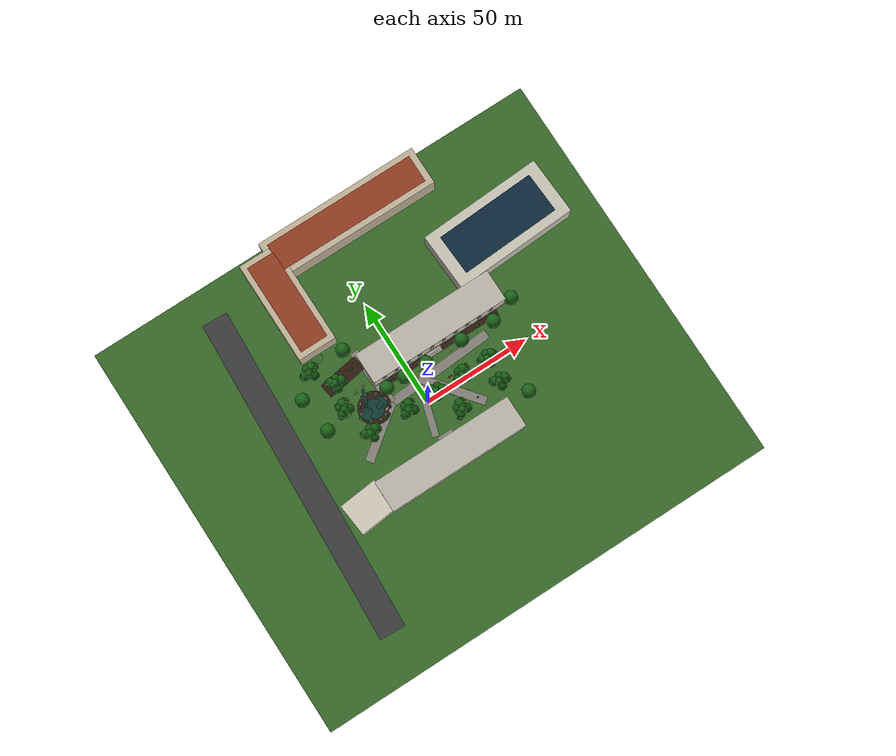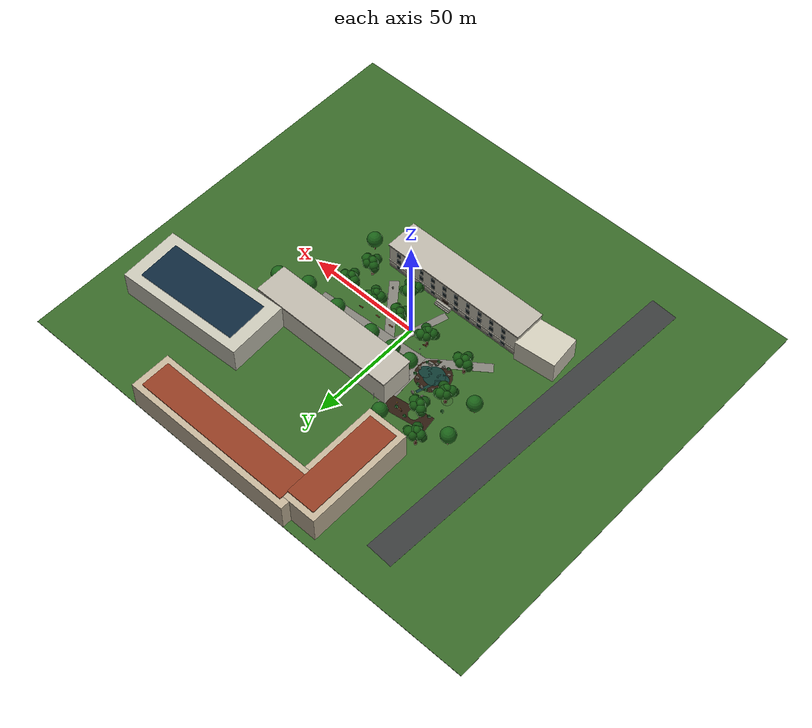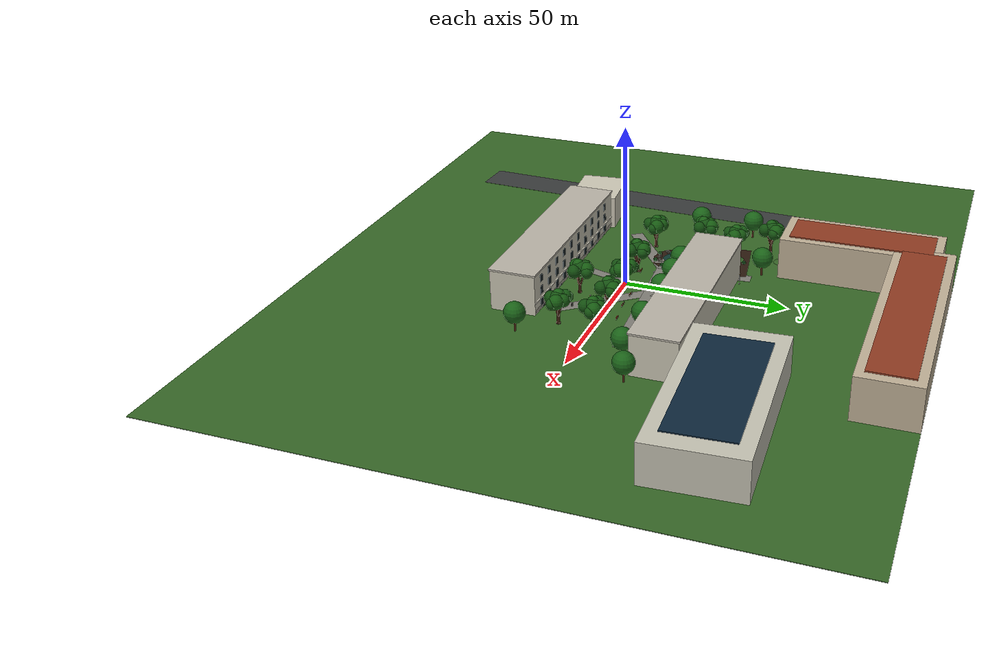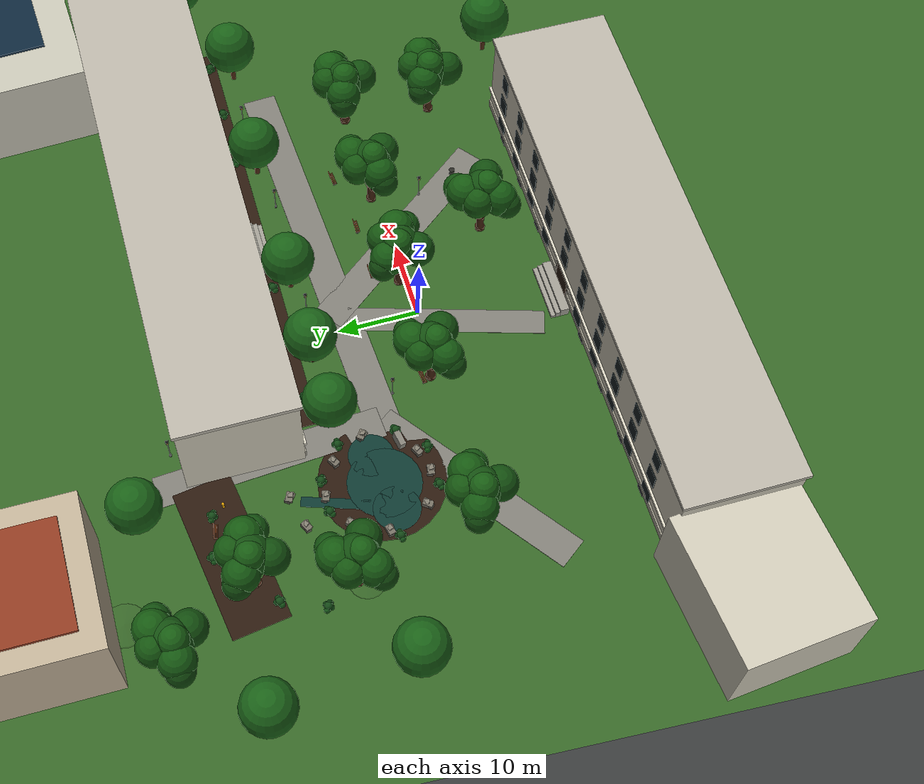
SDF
<?xml version="1.0"?>
<sdf version="1.9">
  <world name="gtl_turtle_pond">
    <physics name="default_physics" type="ignored">
      <max_step_size>0.001</max_step_size>
      <real_time_factor>1.0</real_time_factor>
    </physics>

    <plugin filename="gz-sim-physics-system" name="gz::sim::systems::Physics"/>
    <plugin filename="gz-sim-user-commands-system" name="gz::sim::systems::UserCommands"/>
    <plugin filename="gz-sim-scene-broadcaster-system" name="gz::sim::systems::SceneBroadcaster"/>
    <plugin filename="gz-sim-imu-system" name="gz::sim::systems::Imu"/>
    <plugin filename="gz-sim-sensors-system" name="gz::sim::systems::Sensors">
      <render_engine>ogre2</render_engine>
    </plugin>

    <spherical_coordinates>
      <surface_model>EARTH_WGS84</surface_model>
      <world_frame_orientation>ENU</world_frame_orientation>
      <latitude_deg>34.136878</latitude_deg>
      <longitude_deg>-118.124792</longitude_deg>
      <elevation>245</elevation>
      <heading_deg>0</heading_deg>
    </spherical_coordinates>

    <scene>
      <ambient>0.58 0.59 0.57 1</ambient>
      <background>0.46 0.68 0.88 1</background>
      <shadows>true</shadows>
    </scene>
    <light name="sun" type="directional">
      <cast_shadows>true</cast_shadows>
      <pose>0 0 80 0 0 0</pose>
      <diffuse>0.95 0.92 0.84 1</diffuse>
      <specular>0.25 0.25 0.22 1</specular>
      <direction>-0.45 0.25 -1.0</direction>
    </light>

    <model name="terrain_base">
      <static>true</static>
      <link name="ground">
        <pose>0 0 -0.10 0 0 0</pose>
        <collision name="collision"><geometry><box><size>220 190 0.2</size></box></geometry></collision>
        <visual name="visual">
          <geometry><box><size>220 190 0.2</size></box></geometry>
          <material><ambient>0.17 0.31 0.12 1</ambient><diffuse>0.21 0.40 0.15 1</diffuse></material>
        </visual>
      </link>
    </model>

    <model name="west_service_road">
      <static>true</static>
      <pose>-62 3 0.02 0 0 1.52</pose>
      <link name="road">
        <collision name="collision"><geometry><box><size>155 12 0.06</size></box></geometry></collision>
        <visual name="visual"><geometry><box><size>155 12 0.06</size></box></geometry><material><ambient>0.17 0.18 0.18 1</ambient><diffuse>0.22 0.23 0.23 1</diffuse></material></visual>
      </link>
    </model>

    <!-- Georeferenced garden surface, paths, pond, and planting beds. -->
    <include>
      <name>throop_memorial_garden</name>
      <pose>0 0 0 0 0 0</pose>
      <uri>model://surf_throop_garden</uri>
    </include>

    <!-- The street views establish this south-facing three-story facade. -->
    <include>
      <name>gates_thomas_garden_wing</name>
      <pose>17.5 25 0 0 0 0</pose>
      <uri>model://surf_historic_laboratory</uri>
    </include>

    <!-- Southern laboratory faces north toward the garden. -->
    <include>
      <name>guggenheim_lees_kubota</name>
      <pose>-5 -25 0 0 0 3.141593</pose>
      <uri>model://surf_historic_laboratory</uri>
    </include>
    <model name="guggenheim_west_annex">
      <static>true</static>
      <link name="annex">
        <pose>-46 -25 5.25 0 0 0.10</pose>
        <collision name="collision"><geometry><box><size>18 15 10.5</size></box></geometry></collision>
        <visual name="walls"><geometry><box><size>18 15 10.5</size></box></geometry><material><ambient>0.70 0.68 0.62 1</ambient><diffuse>0.80 0.78 0.71 1</diffuse></material></visual>
      </link>
    </model>

    <!-- Lower-confidence perimeter masses retained from the satellite view. -->
    <model name="east_solar_laboratory">
      <static>true</static>
      <link name="building">
        <pose>66 47 6.0 0 0 0.05</pose>
        <collision name="collision"><geometry><box><size>58 27 12</size></box></geometry></collision>
        <visual name="walls"><geometry><box><size>58 27 12</size></box></geometry><material><ambient>0.69 0.68 0.63 1</ambient><diffuse>0.77 0.76 0.70 1</diffuse></material></visual>
        <visual name="solar_array"><pose>0 0 6.2 0 0 0</pose><geometry><box><size>47 19 0.35</size></box></geometry><material><ambient>0.035 0.09 0.14 1</ambient><diffuse>0.05 0.15 0.23 1</diffuse><specular>0.35 0.40 0.45 1</specular></material></visual>
      </link>
    </model>
    <model name="fairchild_laboratory">
      <static>true</static>
      <link name="building">
        <pose>-28 67 6.5 0 0 1.570796</pose>
        <collision name="collision"><geometry><box><size>48 18 13</size></box></geometry></collision>
        <visual name="walls"><geometry><box><size>48 18 13</size></box></geometry><material><ambient>0.67 0.62 0.53 1</ambient><diffuse>0.75 0.69 0.59 1</diffuse></material></visual>
        <visual name="roof"><pose>0 0 6.7 0 0 0</pose><geometry><box><size>43 13 0.45</size></box></geometry><material><ambient>0.47 0.18 0.10 1</ambient><diffuse>0.56 0.23 0.13 1</diffuse></material></visual>
      </link>
    </model>
    <model name="spalding_laboratory">
      <static>true</static>
      <link name="building">
        <pose>14 86 6.5 0 0 0</pose>
        <collision name="collision"><geometry><box><size>78 18 13</size></box></geometry></collision>
        <visual name="walls"><geometry><box><size>78 18 13</size></box></geometry><material><ambient>0.67 0.62 0.53 1</ambient><diffuse>0.75 0.69 0.59 1</diffuse></material></visual>
        <visual name="roof"><pose>0 0 6.7 0 0 0</pose><geometry><box><size>72 13 0.45</size></box></geometry><material><ambient>0.47 0.18 0.10 1</ambient><diffuse>0.56 0.23 0.13 1</diffuse></material></visual>
      </link>
    </model>

    <!-- Layered shrubs around the pond, woodland, and north facade. -->
    <include><name>shrub_01</name><pose>-28 10 0 0 0 0.2</pose><uri>model://surf_shrub</uri></include>
    <include><name>shrub_02</name><pose>-26 14 0 0 0 -0.3</pose><uri>model://surf_shrub</uri></include>
    <include><name>shrub_03</name><pose>-23 17 0 0 0 0.6</pose><uri>model://surf_shrub</uri></include>
    <include><name>shrub_04</name><pose>-19 17 0 0 0 -0.4</pose><uri>model://surf_shrub</uri></include>
    <include><name>shrub_05</name><pose>-15 14 0 0 0 0.1</pose><uri>model://surf_shrub</uri></include>
    <include><name>shrub_06</name><pose>-15 7 0 0 0 0.5</pose><uri>model://surf_shrub</uri></include>
    <include><name>shrub_07</name><pose>-18 4 0 0 0 -0.2</pose><uri>model://surf_shrub</uri></include>
    <include><name>shrub_08</name><pose>-23 4 0 0 0 0.3</pose><uri>model://surf_shrub</uri></include>
    <include><name>shrub_09</name><pose>-34 20 0 0 0 -0.5</pose><uri>model://surf_shrub</uri></include>
    <include><name>shrub_10</name><pose>-32 25 0 0 0 0.4</pose><uri>model://surf_shrub</uri></include>
    <include><name>shrub_11</name><pose>-25 31 0 0 0 0.1</pose><uri>model://surf_shrub</uri></include>
    <include><name>shrub_12</name><pose>-20 30 0 0 0 -0.4</pose><uri>model://surf_shrub</uri></include>
    <include><name>shrub_13</name><pose>-8 16.2 0 0 0 0.3</pose><uri>model://surf_shrub</uri></include>
    <include><name>shrub_14</name><pose>0 16.2 0 0 0 -0.2</pose><uri>model://surf_shrub</uri></include>
    <include><name>shrub_15</name><pose>8 16.2 0 0 0 0.4</pose><uri>model://surf_shrub</uri></include>
    <include><name>shrub_16</name><pose>28 16.2 0 0 0 -0.3</pose><uri>model://surf_shrub</uri></include>
    <include><name>shrub_17</name><pose>36 16.2 0 0 0 0.2</pose><uri>model://surf_shrub</uri></include>
    <include><name>shrub_18</name><pose>44 16.2 0 0 0 -0.5</pose><uri>model://surf_shrub</uri></include>

    <!-- Rock edge around the ornamental pond and stream. -->
    <include><name>pond_rock_01</name><pose>-27 11 0 0 0 0.2</pose><uri>model://surf_boulder</uri></include>
    <include><name>pond_rock_02</name><pose>-25 15 0 0 0 0.8</pose><uri>model://surf_boulder</uri></include>
    <include><name>pond_rock_03</name><pose>-21 17 0 0 0 -0.3</pose><uri>model://surf_boulder</uri></include>
    <include><name>pond_rock_04</name><pose>-17 15 0 0 0 0.5</pose><uri>model://surf_boulder</uri></include>
    <include><name>pond_rock_05</name><pose>-14.5 11 0 0 0 -0.7</pose><uri>model://surf_boulder</uri></include>
    <include><name>pond_rock_06</name><pose>-18.2 5.3 0 0 0 0.4</pose><uri>model://surf_boulder</uri></include>
    <include><name>pond_rock_07</name><pose>-21 4.5 0 0 0 -0.2</pose><uri>model://surf_boulder</uri></include>
    <include><name>pond_rock_08</name><pose>-25 6 0 0 0 0.9</pose><uri>model://surf_boulder</uri></include>
    <include><name>stream_rock_01</name><pose>-24 20 0 0 0 0.4</pose><uri>model://surf_boulder</uri></include>
    <include><name>stream_rock_02</name><pose>-20 21 0 0 0 -0.5</pose><uri>model://surf_boulder</uri></include>

    <!-- Benches and path lighting match the repeated street-view fixtures. -->
    <include><name>bench_01</name><pose>-9 2 0 0 0 0.1</pose><uri>model://surf_bench</uri></include>
    <include><name>bench_02</name><pose>7 4 0 0 0 0.0</pose><uri>model://surf_bench</uri></include>
    <include><name>bench_03</name><pose>14 4 0 0 0 0.0</pose><uri>model://surf_bench</uri></include>
    <include><name>bench_04</name><pose>22 5 0 0 0 0.1</pose><uri>model://surf_bench</uri></include>
    <include><name>bench_05</name><pose>-8 29 0 0 0 1.5</pose><uri>model://surf_bench</uri></include>
    <include><name>bench_06</name><pose>-22 30 0 0 0 -0.2</pose><uri>model://surf_bench</uri></include>

    <include><name>lamp_01</name><pose>-11 33 0 0 0 0</pose><uri>model://surf_lamp_post</uri></include>
    <include><name>lamp_02</name><pose>-11 20 0 0 0 0</pose><uri>model://surf_lamp_post</uri></include>
    <include><name>lamp_03</name><pose>-10 6 0 0 0 0</pose><uri>model://surf_lamp_post</uri></include>
    <include><name>lamp_04</name><pose>4 13 0 0 0 0</pose><uri>model://surf_lamp_post</uri></include>
    <include><name>lamp_05</name><pose>20 13 0 0 0 0</pose><uri>model://surf_lamp_post</uri></include>
    <include><name>lamp_06</name><pose>34 14 0 0 0 0</pose><uri>model://surf_lamp_post</uri></include>
    <include><name>lamp_07</name><pose>17 -5 0 0 0 0</pose><uri>model://surf_lamp_post</uri></include>

    <!-- Mature multi-trunk specimens dominate the garden canopy. -->
    <include><name>multi_tree_01</name><pose>-36 37 0 0 0 0.2</pose><uri>model://surf_multi_trunk_tree</uri></include>
    <include><name>multi_tree_02</name><pose>-29 27 0 0 0 -0.5</pose><uri>model://surf_multi_trunk_tree</uri></include>
    <include><name>multi_tree_03</name><pose>-32 16 0 0 0 0.8</pose><uri>model://surf_multi_trunk_tree</uri></include>
    <include><name>multi_tree_04</name><pose>-28 1 0 0 0 -0.2</pose><uri>model://surf_multi_trunk_tree</uri></include>
    <include><name>multi_tree_05</name><pose>-9 1 0 0 0 0.6</pose><uri>model://surf_multi_trunk_tree</uri></include>
    <include><name>multi_tree_06</name><pose>5 1 0 0 0 -0.7</pose><uri>model://surf_multi_trunk_tree</uri></include>
    <include><name>multi_tree_07</name><pose>18 1 0 0 0 0.4</pose><uri>model://surf_multi_trunk_tree</uri></include>
    <include><name>multi_tree_08</name><pose>31 1 0 0 0 -0.1</pose><uri>model://surf_multi_trunk_tree</uri></include>
    <include><name>multi_tree_09</name><pose>10 -11 0 0 0 0.9</pose><uri>model://surf_multi_trunk_tree</uri></include>
    <include><name>multi_tree_10</name><pose>30 -10 0 0 0 -0.4</pose><uri>model://surf_multi_trunk_tree</uri></include>

    <include><name>tree_01</name><pose>-45 29 0 0 0 0</pose><uri>model://surf_deciduous_tree</uri></include>
    <include><name>tree_02</name><pose>-43 12 0 0 0 0</pose><uri>model://surf_deciduous_tree</uri></include>
    <include><name>tree_03</name><pose>-19 38 0 0 0 0</pose><uri>model://surf_deciduous_tree</uri></include>
    <include><name>tree_04</name><pose>-12 14 0 0 0 0</pose><uri>model://surf_deciduous_tree</uri></include>
    <include><name>tree_05</name><pose>-3 14 0 0 0 0</pose><uri>model://surf_deciduous_tree</uri></include>
    <include><name>tree_06</name><pose>8 14 0 0 0 0</pose><uri>model://surf_deciduous_tree</uri></include>
    <include><name>tree_07</name><pose>26 14 0 0 0 0</pose><uri>model://surf_deciduous_tree</uri></include>
    <include><name>tree_08</name><pose>42 13.5 0 0 0 0</pose><uri>model://surf_deciduous_tree</uri></include>
    <include><name>tree_09</name><pose>38 -20 0 0 0 0</pose><uri>model://surf_deciduous_tree</uri></include>
    <include><name>tree_10</name><pose>54 18 0 0 0 0</pose><uri>model://surf_deciduous_tree</uri></include>

    <!-- Small fixtures visible near the southern loop. -->
    <model name="site_fixtures">
      <static>true</static>
      <link name="yellow_hydrant">
        <pose>-19 28.5 0 0 0 0</pose>
        <collision name="body_collision"><pose>0 0 0.38 0 0 0</pose><geometry><cylinder><radius>0.15</radius><length>0.76</length></cylinder></geometry></collision>
        <visual name="body"><pose>0 0 0.38 0 0 0</pose><geometry><cylinder><radius>0.14</radius><length>0.76</length></cylinder></geometry><material><ambient>0.72 0.48 0.015 1</ambient><diffuse>0.95 0.68 0.02 1</diffuse></material></visual>
        <visual name="cap"><pose>0 0 0.80 0 0 0</pose><geometry><sphere><radius>0.18</radius></sphere></geometry><material><ambient>0.72 0.48 0.015 1</ambient><diffuse>0.95 0.68 0.02 1</diffuse></material></visual>
      </link>
      <link name="trash_receptacle">
        <pose>19 -10 0 0 0 0</pose>
        <collision name="collision"><pose>0 0 0.42 0 0 0</pose><geometry><cylinder><radius>0.33</radius><length>0.84</length></cylinder></geometry></collision>
        <visual name="body"><pose>0 0 0.42 0 0 0</pose><geometry><cylinder><radius>0.32</radius><length>0.84</length></cylinder></geometry><material><ambient>0.16 0.16 0.14 1</ambient><diffuse>0.24 0.24 0.21 1</diffuse></material></visual>
        <visual name="rim"><pose>0 0 0.84 0 0 0</pose><geometry><cylinder><radius>0.36</radius><length>0.08</length></cylinder></geometry><material><ambient>0.10 0.10 0.09 1</ambient><diffuse>0.16 0.16 0.14 1</diffuse></material></visual>
      </link>
    </model>
  </world>
</sdf>

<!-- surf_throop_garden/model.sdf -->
<sdf version="1.9">
  <!--
    Coordinates are local ENU metres. Path centerlines follow the geographic
    positions visible in the supplied photo spheres.
  -->
  <model name="surf_throop_garden">
    <static>true</static>
    <link name="landscape">
      <!-- Connected concrete path segments approximate the gently curving network. -->
      <collision name="north_axis_collision"><pose>-14.25 21.9 0.025 0 0 -1.497</pose><geometry><box><size>27.4 4.0 0.05</size></box></geometry></collision>
      <visual name="north_axis_visual"><pose>-14.25 21.9 0.025 0 0 -1.497</pose><geometry><box><size>27.4 4.0 0.05</size></box></geometry><material><ambient>0.42 0.41 0.39 1</ambient><diffuse>0.50 0.49 0.46 1</diffuse></material></visual>

      <collision name="central_walk_collision"><pose>12.1 9.6 0.025 0 0 0.060</pose><geometry><box><size>50.8 4.2 0.05</size></box></geometry></collision>
      <visual name="central_walk_visual"><pose>12.1 9.6 0.025 0 0 0.060</pose><geometry><box><size>50.8 4.2 0.05</size></box></geometry><material><ambient>0.42 0.41 0.39 1</ambient><diffuse>0.50 0.49 0.46 1</diffuse></material></visual>

      <collision name="southeast_walk_collision"><pose>11.65 -1.25 0.025 0 0 -0.901</pose><geometry><box><size>30.8 4.0 0.05</size></box></geometry></collision>
      <visual name="southeast_walk_visual"><pose>11.65 -1.25 0.025 0 0 -0.901</pose><geometry><box><size>30.8 4.0 0.05</size></box></geometry><material><ambient>0.42 0.41 0.39 1</ambient><diffuse>0.50 0.49 0.46 1</diffuse></material></visual>

      <collision name="west_walk_collision"><pose>-24.2 0.15 0.025 0 0 -2.500</pose><geometry><box><size>27.5 4.0 0.05</size></box></geometry></collision>
      <visual name="west_walk_visual"><pose>-24.2 0.15 0.025 0 0 -2.500</pose><geometry><box><size>27.5 4.0 0.05</size></box></geometry><material><ambient>0.42 0.41 0.39 1</ambient><diffuse>0.50 0.49 0.46 1</diffuse></material></visual>

      <collision name="northeast_walk_collision"><pose>-3.9 25.0 0.025 0 0 0.315</pose><geometry><box><size>21.5 3.2 0.05</size></box></geometry></collision>
      <visual name="northeast_walk_visual"><pose>-3.9 25.0 0.025 0 0 0.315</pose><geometry><box><size>21.5 3.2 0.05</size></box></geometry><material><ambient>0.42 0.41 0.39 1</ambient><diffuse>0.50 0.49 0.46 1</diffuse></material></visual>

      <collision name="south_connector_collision"><pose>-2.0 -3.0 0.025 0 0 1.280</pose><geometry><box><size>24 3.2 0.05</size></box></geometry></collision>
      <visual name="south_connector_visual"><pose>-2.0 -3.0 0.025 0 0 1.280</pose><geometry><box><size>24 3.2 0.05</size></box></geometry><material><ambient>0.42 0.41 0.39 1</ambient><diffuse>0.50 0.49 0.46 1</diffuse></material></visual>

      <!-- Subtle raised garden ground, kept away from robot travel lanes. -->
      <collision name="mound_northwest_collision"><pose>-27 28 -8.55 0 0 0</pose><geometry><sphere><radius>9.0</radius></sphere></geometry></collision>
      <visual name="mound_northwest_visual"><pose>-27 28 -8.55 0 0 0</pose><geometry><sphere><radius>9.0</radius></sphere></geometry><material><ambient>0.17 0.30 0.12 1</ambient><diffuse>0.21 0.39 0.15 1</diffuse></material></visual>
      <collision name="mound_north_collision"><pose>-30 42 -7.55 0 0 0</pose><geometry><sphere><radius>8.0</radius></sphere></geometry></collision>
      <visual name="mound_north_visual"><pose>-30 42 -7.55 0 0 0</pose><geometry><sphere><radius>8.0</radius></sphere></geometry><material><ambient>0.17 0.30 0.12 1</ambient><diffuse>0.21 0.39 0.15 1</diffuse></material></visual>
      <collision name="mound_west_collision"><pose>-32 15 -6.62 0 0 0</pose><geometry><sphere><radius>7.0</radius></sphere></geometry></collision>
      <visual name="mound_west_visual"><pose>-32 15 -6.62 0 0 0</pose><geometry><sphere><radius>7.0</radius></sphere></geometry><material><ambient>0.17 0.30 0.12 1</ambient><diffuse>0.21 0.39 0.15 1</diffuse></material></visual>

      <!-- Irregular ornamental pond and the short rock-lined feeder stream. -->
      <visual name="pond_water_main">
        <pose>-21.0 10.0 0.055 0 0 0</pose>
        <geometry><cylinder><radius>4.4</radius><length>0.06</length></cylinder></geometry>
        <material><ambient>0.035 0.12 0.11 0.92</ambient><diffuse>0.055 0.22 0.19 0.92</diffuse><specular>0.45 0.48 0.46 1</specular></material>
        <transparency>0.10</transparency>
      </visual>
      <visual name="pond_water_east">
        <pose>-17.2 10.6 0.055 0 0 0</pose>
        <geometry><cylinder><radius>2.7</radius><length>0.06</length></cylinder></geometry>
        <material><ambient>0.035 0.12 0.11 0.92</ambient><diffuse>0.055 0.22 0.19 0.92</diffuse><specular>0.45 0.48 0.46 1</specular></material><transparency>0.10</transparency>
      </visual>
      <visual name="pond_water_west">
        <pose>-24.5 9.5 0.055 0 0 0</pose>
        <geometry><cylinder><radius>2.8</radius><length>0.06</length></cylinder></geometry>
        <material><ambient>0.035 0.12 0.11 0.92</ambient><diffuse>0.055 0.22 0.19 0.92</diffuse><specular>0.45 0.48 0.46 1</specular></material><transparency>0.10</transparency>
      </visual>
      <visual name="feeder_stream">
        <pose>-22.0 16.1 0.055 0 0 1.25</pose>
        <geometry><box><size>8.0 1.25 0.06</size></box></geometry>
        <material><ambient>0.035 0.12 0.11 0.92</ambient><diffuse>0.055 0.22 0.19 0.92</diffuse><specular>0.45 0.48 0.46 1</specular></material><transparency>0.10</transparency>
      </visual>

      <!-- Dark mulched beds create the layered low planting visible at eye level. -->
      <visual name="pond_bed"><pose>-20.7 10.2 0.025 0 0 0</pose><geometry><cylinder><radius>7.5</radius><length>0.05</length></cylinder></geometry><material><ambient>0.12 0.075 0.04 1</ambient><diffuse>0.17 0.10 0.055 1</diffuse></material></visual>
      <visual name="north_bed"><pose>-25 29 0.035 0 0 0.15</pose><geometry><box><size>19 7 0.07</size></box></geometry><material><ambient>0.12 0.075 0.04 1</ambient><diffuse>0.17 0.10 0.055 1</diffuse></material></visual>
      <visual name="building_bed"><pose>17.5 16.8 0.035 0 0 0</pose><geometry><box><size>58 2.8 0.07</size></box></geometry><material><ambient>0.12 0.075 0.04 1</ambient><diffuse>0.17 0.10 0.055 1</diffuse></material></visual>

      <!-- Stone marker near the southwest pond edge. -->
      <collision name="memorial_stone_collision"><pose>-16.5 7.0 0.72 0.08 -0.12 0.2</pose><geometry><box><size>1.8 0.75 1.45</size></box></geometry></collision>
      <visual name="memorial_stone_visual"><pose>-16.5 7.0 0.72 0.08 -0.12 0.2</pose><geometry><box><size>1.8 0.75 1.45</size></box></geometry><material><ambient>0.43 0.42 0.39 1</ambient><diffuse>0.53 0.52 0.48 1</diffuse></material></visual>
      <visual name="memorial_plaque"><pose>-16.45 6.59 0.78 0.08 -0.12 0.2</pose><geometry><box><size>0.95 0.04 0.62</size></box></geometry><material><ambient>0.20 0.12 0.045 1</ambient><diffuse>0.38 0.23 0.08 1</diffuse><specular>0.35 0.28 0.12 1</specular></material></visual>
    </link>
  </model>
</sdf>

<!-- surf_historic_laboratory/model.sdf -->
<sdf version="1.9">
  <!-- Local garden-facing facade is the -Y side. -->
  <model name="surf_historic_laboratory">
    <static>true</static>
    <link name="building">
      <collision name="main_collision">
        <pose>0 0 6.25 0 0 0</pose>
        <geometry><box><size>66 14 12.5</size></box></geometry>
      </collision>
      <visual name="main_walls">
        <pose>0 0 6.25 0 0 0</pose>
        <geometry><box><size>66 14 12.5</size></box></geometry>
        <material><ambient>0.70 0.68 0.62 1</ambient><diffuse>0.80 0.78 0.71 1</diffuse></material>
      </visual>
      <visual name="foundation_band">
        <pose>0 -7.08 1.15 0 0 0</pose>
        <geometry><box><size>66 0.22 1.0</size></box></geometry>
        <material><ambient>0.55 0.53 0.48 1</ambient><diffuse>0.64 0.62 0.56 1</diffuse></material>
      </visual>
      <visual name="belt_course">
        <pose>0 -7.12 3.85 0 0 0</pose>
        <geometry><box><size>66.3 0.32 0.38</size></box></geometry>
        <material><ambient>0.77 0.75 0.69 1</ambient><diffuse>0.86 0.84 0.77 1</diffuse></material>
      </visual>
      <visual name="roof_parapet">
        <pose>0 0 12.75 0 0 0</pose>
        <geometry><box><size>66.6 14.6 0.55</size></box></geometry>
        <material><ambient>0.64 0.62 0.58 1</ambient><diffuse>0.72 0.70 0.65 1</diffuse></material>
      </visual>

      <!-- Dark recessed windows, arranged in the three rows seen in the photos. -->
      <visual name="window_g_01"><pose>-28 -7.13 2.45 0 0 0</pose><geometry><box><size>2.2 0.12 2.45</size></box></geometry><material><ambient>0.035 0.055 0.060 1</ambient><diffuse>0.08 0.12 0.13 1</diffuse><specular>0.20 0.24 0.24 1</specular></material></visual>
      <visual name="window_g_02"><pose>-22 -7.13 2.45 0 0 0</pose><geometry><box><size>2.2 0.12 2.45</size></box></geometry><material><ambient>0.035 0.055 0.060 1</ambient><diffuse>0.08 0.12 0.13 1</diffuse><specular>0.20 0.24 0.24 1</specular></material></visual>
      <visual name="window_g_03"><pose>-16 -7.13 2.45 0 0 0</pose><geometry><box><size>2.2 0.12 2.45</size></box></geometry><material><ambient>0.035 0.055 0.060 1</ambient><diffuse>0.08 0.12 0.13 1</diffuse><specular>0.20 0.24 0.24 1</specular></material></visual>
      <visual name="window_g_04"><pose>-10 -7.13 2.45 0 0 0</pose><geometry><box><size>2.2 0.12 2.45</size></box></geometry><material><ambient>0.035 0.055 0.060 1</ambient><diffuse>0.08 0.12 0.13 1</diffuse><specular>0.20 0.24 0.24 1</specular></material></visual>
      <visual name="window_g_05"><pose>20 -7.13 2.45 0 0 0</pose><geometry><box><size>2.2 0.12 2.45</size></box></geometry><material><ambient>0.035 0.055 0.060 1</ambient><diffuse>0.08 0.12 0.13 1</diffuse><specular>0.20 0.24 0.24 1</specular></material></visual>
      <visual name="window_g_06"><pose>2 -7.13 2.45 0 0 0</pose><geometry><box><size>2.2 0.12 2.45</size></box></geometry><material><ambient>0.035 0.055 0.060 1</ambient><diffuse>0.08 0.12 0.13 1</diffuse><specular>0.20 0.24 0.24 1</specular></material></visual>
      <visual name="window_g_07"><pose>8 -7.13 2.45 0 0 0</pose><geometry><box><size>2.2 0.12 2.45</size></box></geometry><material><ambient>0.035 0.055 0.060 1</ambient><diffuse>0.08 0.12 0.13 1</diffuse><specular>0.20 0.24 0.24 1</specular></material></visual>
      <visual name="window_g_08"><pose>14 -7.13 2.45 0 0 0</pose><geometry><box><size>2.2 0.12 2.45</size></box></geometry><material><ambient>0.035 0.055 0.060 1</ambient><diffuse>0.08 0.12 0.13 1</diffuse><specular>0.20 0.24 0.24 1</specular></material></visual>
      <visual name="window_g_09"><pose>26 -7.13 2.45 0 0 0</pose><geometry><box><size>2.2 0.12 2.45</size></box></geometry><material><ambient>0.035 0.055 0.060 1</ambient><diffuse>0.08 0.12 0.13 1</diffuse><specular>0.20 0.24 0.24 1</specular></material></visual>

      <visual name="window_2_01"><pose>-28 -7.13 6.25 0 0 0</pose><geometry><box><size>2.0 0.12 2.35</size></box></geometry><material><ambient>0.035 0.055 0.060 1</ambient><diffuse>0.08 0.12 0.13 1</diffuse><specular>0.20 0.24 0.24 1</specular></material></visual>
      <visual name="window_2_02"><pose>-22 -7.13 6.25 0 0 0</pose><geometry><box><size>2.0 0.12 2.35</size></box></geometry><material><ambient>0.035 0.055 0.060 1</ambient><diffuse>0.08 0.12 0.13 1</diffuse><specular>0.20 0.24 0.24 1</specular></material></visual>
      <visual name="window_2_03"><pose>-16 -7.13 6.25 0 0 0</pose><geometry><box><size>2.0 0.12 2.35</size></box></geometry><material><ambient>0.035 0.055 0.060 1</ambient><diffuse>0.08 0.12 0.13 1</diffuse><specular>0.20 0.24 0.24 1</specular></material></visual>
      <visual name="window_2_04"><pose>-10 -7.13 6.25 0 0 0</pose><geometry><box><size>2.0 0.12 2.35</size></box></geometry><material><ambient>0.035 0.055 0.060 1</ambient><diffuse>0.08 0.12 0.13 1</diffuse><specular>0.20 0.24 0.24 1</specular></material></visual>
      <visual name="window_2_05"><pose>-4 -7.13 6.25 0 0 0</pose><geometry><box><size>2.0 0.12 2.35</size></box></geometry><material><ambient>0.035 0.055 0.060 1</ambient><diffuse>0.08 0.12 0.13 1</diffuse><specular>0.20 0.24 0.24 1</specular></material></visual>
      <visual name="window_2_06"><pose>2 -7.13 6.25 0 0 0</pose><geometry><box><size>2.0 0.12 2.35</size></box></geometry><material><ambient>0.035 0.055 0.060 1</ambient><diffuse>0.08 0.12 0.13 1</diffuse><specular>0.20 0.24 0.24 1</specular></material></visual>
      <visual name="window_2_07"><pose>8 -7.13 6.25 0 0 0</pose><geometry><box><size>2.0 0.12 2.35</size></box></geometry><material><ambient>0.035 0.055 0.060 1</ambient><diffuse>0.08 0.12 0.13 1</diffuse><specular>0.20 0.24 0.24 1</specular></material></visual>
      <visual name="window_2_08"><pose>14 -7.13 6.25 0 0 0</pose><geometry><box><size>2.0 0.12 2.35</size></box></geometry><material><ambient>0.035 0.055 0.060 1</ambient><diffuse>0.08 0.12 0.13 1</diffuse><specular>0.20 0.24 0.24 1</specular></material></visual>
      <visual name="window_2_09"><pose>20 -7.13 6.25 0 0 0</pose><geometry><box><size>2.0 0.12 2.35</size></box></geometry><material><ambient>0.035 0.055 0.060 1</ambient><diffuse>0.08 0.12 0.13 1</diffuse><specular>0.20 0.24 0.24 1</specular></material></visual>
      <visual name="window_2_10"><pose>26 -7.13 6.25 0 0 0</pose><geometry><box><size>2.0 0.12 2.35</size></box></geometry><material><ambient>0.035 0.055 0.060 1</ambient><diffuse>0.08 0.12 0.13 1</diffuse><specular>0.20 0.24 0.24 1</specular></material></visual>

      <visual name="window_3_01"><pose>-28 -7.13 10.0 0 0 0</pose><geometry><box><size>1.8 0.12 2.25</size></box></geometry><material><ambient>0.035 0.055 0.060 1</ambient><diffuse>0.08 0.12 0.13 1</diffuse><specular>0.20 0.24 0.24 1</specular></material></visual>
      <visual name="window_3_02"><pose>-22 -7.13 10.0 0 0 0</pose><geometry><box><size>1.8 0.12 2.25</size></box></geometry><material><ambient>0.035 0.055 0.060 1</ambient><diffuse>0.08 0.12 0.13 1</diffuse><specular>0.20 0.24 0.24 1</specular></material></visual>
      <visual name="window_3_03"><pose>-16 -7.13 10.0 0 0 0</pose><geometry><box><size>1.8 0.12 2.25</size></box></geometry><material><ambient>0.035 0.055 0.060 1</ambient><diffuse>0.08 0.12 0.13 1</diffuse><specular>0.20 0.24 0.24 1</specular></material></visual>
      <visual name="window_3_04"><pose>-10 -7.13 10.0 0 0 0</pose><geometry><box><size>1.8 0.12 2.25</size></box></geometry><material><ambient>0.035 0.055 0.060 1</ambient><diffuse>0.08 0.12 0.13 1</diffuse><specular>0.20 0.24 0.24 1</specular></material></visual>
      <visual name="window_3_05"><pose>-4 -7.13 10.0 0 0 0</pose><geometry><box><size>1.8 0.12 2.25</size></box></geometry><material><ambient>0.035 0.055 0.060 1</ambient><diffuse>0.08 0.12 0.13 1</diffuse><specular>0.20 0.24 0.24 1</specular></material></visual>
      <visual name="window_3_06"><pose>2 -7.13 10.0 0 0 0</pose><geometry><box><size>1.8 0.12 2.25</size></box></geometry><material><ambient>0.035 0.055 0.060 1</ambient><diffuse>0.08 0.12 0.13 1</diffuse><specular>0.20 0.24 0.24 1</specular></material></visual>
      <visual name="window_3_07"><pose>8 -7.13 10.0 0 0 0</pose><geometry><box><size>1.8 0.12 2.25</size></box></geometry><material><ambient>0.035 0.055 0.060 1</ambient><diffuse>0.08 0.12 0.13 1</diffuse><specular>0.20 0.24 0.24 1</specular></material></visual>
      <visual name="window_3_08"><pose>14 -7.13 10.0 0 0 0</pose><geometry><box><size>1.8 0.12 2.25</size></box></geometry><material><ambient>0.035 0.055 0.060 1</ambient><diffuse>0.08 0.12 0.13 1</diffuse><specular>0.20 0.24 0.24 1</specular></material></visual>
      <visual name="window_3_09"><pose>20 -7.13 10.0 0 0 0</pose><geometry><box><size>1.8 0.12 2.25</size></box></geometry><material><ambient>0.035 0.055 0.060 1</ambient><diffuse>0.08 0.12 0.13 1</diffuse><specular>0.20 0.24 0.24 1</specular></material></visual>
      <visual name="window_3_10"><pose>26 -7.13 10.0 0 0 0</pose><geometry><box><size>1.8 0.12 2.25</size></box></geometry><material><ambient>0.035 0.055 0.060 1</ambient><diffuse>0.08 0.12 0.13 1</diffuse><specular>0.20 0.24 0.24 1</specular></material></visual>

      <visual name="main_door">
        <pose>-3.5 -7.18 1.75 0 0 0</pose>
        <geometry><box><size>3.2 0.22 3.5</size></box></geometry>
        <material><ambient>0.08 0.055 0.035 1</ambient><diffuse>0.16 0.10 0.055 1</diffuse></material>
      </visual>
      <visual name="door_surround">
        <pose>-3.5 -7.11 3.0 0 0 0</pose>
        <geometry><box><size>5.0 0.28 0.42</size></box></geometry>
        <material><ambient>0.77 0.75 0.69 1</ambient><diffuse>0.86 0.84 0.77 1</diffuse></material>
      </visual>
      <visual name="entrance_name_panel">
        <pose>-3.5 -7.19 3.42 0 0 0</pose>
        <geometry><box><size>4.2 0.10 0.42</size></box></geometry>
        <material><ambient>0.42 0.39 0.33 1</ambient><diffuse>0.54 0.50 0.42 1</diffuse></material>
      </visual>
      <visual name="left_door_sconce">
        <pose>-5.45 -7.24 2.35 0 0 0</pose>
        <geometry><box><size>0.18 0.15 0.45</size></box></geometry>
        <material><ambient>0.07 0.06 0.045 1</ambient><diffuse>0.13 0.11 0.08 1</diffuse><emissive>0.22 0.17 0.08 1</emissive></material>
      </visual>
      <visual name="right_door_sconce">
        <pose>-1.55 -7.24 2.35 0 0 0</pose>
        <geometry><box><size>0.18 0.15 0.45</size></box></geometry>
        <material><ambient>0.07 0.06 0.045 1</ambient><diffuse>0.13 0.11 0.08 1</diffuse><emissive>0.22 0.17 0.08 1</emissive></material>
      </visual>

      <!-- Small barred basement windows beneath the projecting foundation band. -->
      <visual name="basement_01"><pose>-27 -7.14 0.55 0 0 0</pose><geometry><box><size>1.5 0.12 0.70</size></box></geometry><material><ambient>0.025 0.035 0.035 1</ambient><diffuse>0.055 0.075 0.075 1</diffuse></material></visual>
      <visual name="basement_02"><pose>-20 -7.14 0.55 0 0 0</pose><geometry><box><size>1.5 0.12 0.70</size></box></geometry><material><ambient>0.025 0.035 0.035 1</ambient><diffuse>0.055 0.075 0.075 1</diffuse></material></visual>
      <visual name="basement_03"><pose>-13 -7.14 0.55 0 0 0</pose><geometry><box><size>1.5 0.12 0.70</size></box></geometry><material><ambient>0.025 0.035 0.035 1</ambient><diffuse>0.055 0.075 0.075 1</diffuse></material></visual>
      <visual name="basement_04"><pose>4 -7.14 0.55 0 0 0</pose><geometry><box><size>1.5 0.12 0.70</size></box></geometry><material><ambient>0.025 0.035 0.035 1</ambient><diffuse>0.055 0.075 0.075 1</diffuse></material></visual>
      <visual name="basement_05"><pose>11 -7.14 0.55 0 0 0</pose><geometry><box><size>1.5 0.12 0.70</size></box></geometry><material><ambient>0.025 0.035 0.035 1</ambient><diffuse>0.055 0.075 0.075 1</diffuse></material></visual>
      <visual name="basement_06"><pose>18 -7.14 0.55 0 0 0</pose><geometry><box><size>1.5 0.12 0.70</size></box></geometry><material><ambient>0.025 0.035 0.035 1</ambient><diffuse>0.055 0.075 0.075 1</diffuse></material></visual>
      <visual name="basement_07"><pose>25 -7.14 0.55 0 0 0</pose><geometry><box><size>1.5 0.12 0.70</size></box></geometry><material><ambient>0.025 0.035 0.035 1</ambient><diffuse>0.055 0.075 0.075 1</diffuse></material></visual>

      <collision name="top_step_collision"><pose>-3.5 -7.85 0.60 0 0 0</pose><geometry><box><size>7.2 1.1 1.2</size></box></geometry></collision>
      <visual name="top_step_visual"><pose>-3.5 -7.85 0.60 0 0 0</pose><geometry><box><size>7.2 1.1 1.2</size></box></geometry><material><ambient>0.53 0.52 0.49 1</ambient><diffuse>0.62 0.61 0.57 1</diffuse></material></visual>
      <collision name="middle_step_collision"><pose>-3.5 -8.65 0.40 0 0 0</pose><geometry><box><size>7.2 0.7 0.8</size></box></geometry></collision>
      <visual name="middle_step_visual"><pose>-3.5 -8.65 0.40 0 0 0</pose><geometry><box><size>7.2 0.7 0.8</size></box></geometry><material><ambient>0.53 0.52 0.49 1</ambient><diffuse>0.62 0.61 0.57 1</diffuse></material></visual>
      <collision name="bottom_step_collision"><pose>-3.5 -9.25 0.20 0 0 0</pose><geometry><box><size>7.2 0.6 0.4</size></box></geometry></collision>
      <visual name="bottom_step_visual"><pose>-3.5 -9.25 0.20 0 0 0</pose><geometry><box><size>7.2 0.6 0.4</size></box></geometry><material><ambient>0.53 0.52 0.49 1</ambient><diffuse>0.62 0.61 0.57 1</diffuse></material></visual>
    </link>
  </model>
</sdf>

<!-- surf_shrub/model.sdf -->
<sdf version="1.9">
  <model name="surf_shrub">
    <static>true</static>
    <link name="shrub">
      <collision name="center_collision">
        <pose>0 0 0.52 0 0 0</pose>
        <geometry><sphere><radius>0.52</radius></sphere></geometry>
      </collision>
      <collision name="left_collision">
        <pose>-0.42 0.03 0.39 0 0 0</pose>
        <geometry><sphere><radius>0.39</radius></sphere></geometry>
      </collision>
      <collision name="right_collision">
        <pose>0.42 -0.04 0.40 0 0 0</pose>
        <geometry><sphere><radius>0.40</radius></sphere></geometry>
      </collision>
      <collision name="front_collision">
        <pose>0 -0.34 0.34 0 0 0</pose>
        <geometry><sphere><radius>0.34</radius></sphere></geometry>
      </collision>

      <visual name="center_foliage">
        <pose>0 0 0.52 0 0 0</pose>
        <geometry><sphere><radius>0.52</radius></sphere></geometry>
        <material>
          <ambient>0.045 0.18 0.055 1</ambient>
          <diffuse>0.075 0.28 0.085 1</diffuse>
          <specular>0.015 0.025 0.015 1</specular>
        </material>
      </visual>
      <visual name="left_foliage">
        <pose>-0.42 0.03 0.39 0 0 0</pose>
        <geometry><sphere><radius>0.39</radius></sphere></geometry>
        <material>
          <ambient>0.055 0.22 0.065 1</ambient>
          <diffuse>0.085 0.33 0.095 1</diffuse>
          <specular>0.015 0.025 0.015 1</specular>
        </material>
      </visual>
      <visual name="right_foliage">
        <pose>0.42 -0.04 0.40 0 0 0</pose>
        <geometry><sphere><radius>0.40</radius></sphere></geometry>
        <material>
          <ambient>0.035 0.16 0.045 1</ambient>
          <diffuse>0.060 0.25 0.070 1</diffuse>
          <specular>0.015 0.025 0.015 1</specular>
        </material>
      </visual>
      <visual name="front_foliage">
        <pose>0 -0.34 0.34 0 0 0</pose>
        <geometry><sphere><radius>0.34</radius></sphere></geometry>
        <material>
          <ambient>0.060 0.23 0.070 1</ambient>
          <diffuse>0.090 0.34 0.100 1</diffuse>
          <specular>0.015 0.025 0.015 1</specular>
        </material>
      </visual>
      <visual name="rear_foliage">
        <pose>0.16 0.34 0.37 0 0 0</pose>
        <geometry><sphere><radius>0.37</radius></sphere></geometry>
        <material>
          <ambient>0.040 0.17 0.050 1</ambient>
          <diffuse>0.068 0.27 0.078 1</diffuse>
          <specular>0.015 0.025 0.015 1</specular>
        </material>
      </visual>
    </link>
  </model>
</sdf>

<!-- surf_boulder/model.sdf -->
<sdf version="1.9">
  <model name="surf_boulder">
    <static>true</static>
    <link name="boulder">
      <collision name="main_collision">
        <pose>0 0 0.34 0.04 -0.10 0.08</pose>
        <geometry><box><size>1.18 0.82 0.64</size></box></geometry>
      </collision>
      <collision name="shoulder_collision">
        <pose>-0.37 0.08 0.26 -0.08 0.13 -0.20</pose>
        <geometry><box><size>0.62 0.68 0.46</size></box></geometry>
      </collision>

      <visual name="main_stone_visual">
        <pose>0 0 0.34 0.04 -0.10 0.08</pose>
        <geometry><box><size>1.18 0.82 0.64</size></box></geometry>
        <material>
          <ambient>0.30 0.29 0.26 1</ambient>
          <diffuse>0.46 0.44 0.39 1</diffuse>
          <specular>0.045 0.045 0.040 1</specular>
        </material>
      </visual>
      <visual name="left_stone_visual">
        <pose>-0.37 0.08 0.27 -0.08 0.13 -0.20</pose>
        <geometry><box><size>0.62 0.68 0.46</size></box></geometry>
        <material>
          <ambient>0.26 0.255 0.235 1</ambient>
          <diffuse>0.40 0.39 0.35 1</diffuse>
          <specular>0.040 0.040 0.035 1</specular>
        </material>
      </visual>
      <visual name="top_stone_visual">
        <pose>0.20 -0.06 0.61 -0.16 0.20 0.18</pose>
        <geometry><box><size>0.72 0.56 0.28</size></box></geometry>
        <material>
          <ambient>0.34 0.33 0.30 1</ambient>
          <diffuse>0.50 0.48 0.43 1</diffuse>
          <specular>0.045 0.045 0.040 1</specular>
        </material>
      </visual>
      <visual name="front_stone_visual">
        <pose>0.28 -0.32 0.27 0.13 -0.08 -0.12</pose>
        <geometry><box><size>0.66 0.38 0.42</size></box></geometry>
        <material>
          <ambient>0.28 0.275 0.25 1</ambient>
          <diffuse>0.43 0.42 0.37 1</diffuse>
          <specular>0.040 0.040 0.035 1</specular>
        </material>
      </visual>
    </link>
  </model>
</sdf>

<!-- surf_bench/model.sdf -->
<sdf version="1.9">
  <model name="surf_bench">
    <static>true</static>
    <link name="bench">
      <!-- The seat and back collisions are continuous so mobile robots cannot
           become caught in the small visual gaps between timber slats. -->
      <collision name="seat_collision">
        <pose>0 0 0.48 0 0 0</pose>
        <geometry>
          <box>
            <size>1.80 0.50 0.10</size>
          </box>
        </geometry>
      </collision>
      <collision name="back_collision">
        <pose>0 0.25 0.84 -0.14 0 0</pose>
        <geometry>
          <box>
            <size>1.80 0.10 0.55</size>
          </box>
        </geometry>
      </collision>
      <collision name="left_leg_collision">
        <pose>-0.66 0 0.25 0 0 0</pose>
        <geometry>
          <box>
            <size>0.10 0.46 0.50</size>
          </box>
        </geometry>
      </collision>
      <collision name="right_leg_collision">
        <pose>0.66 0 0.25 0 0 0</pose>
        <geometry>
          <box>
            <size>0.10 0.46 0.50</size>
          </box>
        </geometry>
      </collision>

      <visual name="seat_front_slat">
        <pose>0 -0.18 0.48 0 0 0</pose>
        <geometry><box><size>1.80 0.12 0.09</size></box></geometry>
        <material>
          <ambient>0.28 0.12 0.045 1</ambient>
          <diffuse>0.42 0.20 0.075 1</diffuse>
          <specular>0.05 0.04 0.03 1</specular>
        </material>
      </visual>
      <visual name="seat_center_slat">
        <pose>0 0 0.48 0 0 0</pose>
        <geometry><box><size>1.80 0.12 0.09</size></box></geometry>
        <material>
          <ambient>0.28 0.12 0.045 1</ambient>
          <diffuse>0.42 0.20 0.075 1</diffuse>
          <specular>0.05 0.04 0.03 1</specular>
        </material>
      </visual>
      <visual name="seat_rear_slat">
        <pose>0 0.18 0.48 0 0 0</pose>
        <geometry><box><size>1.80 0.12 0.09</size></box></geometry>
        <material>
          <ambient>0.28 0.12 0.045 1</ambient>
          <diffuse>0.42 0.20 0.075 1</diffuse>
          <specular>0.05 0.04 0.03 1</specular>
        </material>
      </visual>
      <visual name="back_lower_slat">
        <pose>0 0.23 0.75 -0.14 0 0</pose>
        <geometry><box><size>1.80 0.075 0.18</size></box></geometry>
        <material>
          <ambient>0.28 0.12 0.045 1</ambient>
          <diffuse>0.42 0.20 0.075 1</diffuse>
          <specular>0.05 0.04 0.03 1</specular>
        </material>
      </visual>
      <visual name="back_upper_slat">
        <pose>0 0.26 0.98 -0.14 0 0</pose>
        <geometry><box><size>1.80 0.075 0.18</size></box></geometry>
        <material>
          <ambient>0.28 0.12 0.045 1</ambient>
          <diffuse>0.42 0.20 0.075 1</diffuse>
          <specular>0.05 0.04 0.03 1</specular>
        </material>
      </visual>

      <visual name="left_leg_visual">
        <pose>-0.66 0 0.25 0 0 0</pose>
        <geometry><box><size>0.09 0.44 0.50</size></box></geometry>
        <material>
          <ambient>0.055 0.055 0.050 1</ambient>
          <diffuse>0.095 0.095 0.085 1</diffuse>
          <specular>0.28 0.28 0.25 1</specular>
        </material>
      </visual>
      <visual name="right_leg_visual">
        <pose>0.66 0 0.25 0 0 0</pose>
        <geometry><box><size>0.09 0.44 0.50</size></box></geometry>
        <material>
          <ambient>0.055 0.055 0.050 1</ambient>
          <diffuse>0.095 0.095 0.085 1</diffuse>
          <specular>0.28 0.28 0.25 1</specular>
        </material>
      </visual>
      <visual name="left_back_support">
        <pose>-0.66 0.23 0.78 -0.14 0 0</pose>
        <geometry><box><size>0.07 0.07 0.62</size></box></geometry>
        <material>
          <ambient>0.055 0.055 0.050 1</ambient>
          <diffuse>0.095 0.095 0.085 1</diffuse>
          <specular>0.28 0.28 0.25 1</specular>
        </material>
      </visual>
      <visual name="right_back_support">
        <pose>0.66 0.23 0.78 -0.14 0 0</pose>
        <geometry><box><size>0.07 0.07 0.62</size></box></geometry>
        <material>
          <ambient>0.055 0.055 0.050 1</ambient>
          <diffuse>0.095 0.095 0.085 1</diffuse>
          <specular>0.28 0.28 0.25 1</specular>
        </material>
      </visual>
    </link>
  </model>
</sdf>

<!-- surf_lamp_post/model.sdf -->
<sdf version="1.9">
  <model name="surf_lamp_post">
    <static>true</static>
    <link name="lamp_post">
      <collision name="base_collision">
        <pose>0 0 0.12 0 0 0</pose>
        <geometry><cylinder><radius>0.16</radius><length>0.24</length></cylinder></geometry>
      </collision>
      <collision name="post_collision">
        <pose>0 0 1.65 0 0 0</pose>
        <geometry><cylinder><radius>0.055</radius><length>3.10</length></cylinder></geometry>
      </collision>
      <collision name="lantern_collision">
        <pose>0 0 3.31 0 0 0</pose>
        <geometry><box><size>0.34 0.34 0.42</size></box></geometry>
      </collision>

      <visual name="base_visual">
        <pose>0 0 0.12 0 0 0</pose>
        <geometry><cylinder><radius>0.16</radius><length>0.24</length></cylinder></geometry>
        <material>
          <ambient>0.025 0.028 0.026 1</ambient>
          <diffuse>0.055 0.060 0.055 1</diffuse>
          <specular>0.30 0.30 0.28 1</specular>
        </material>
      </visual>
      <visual name="base_cap_visual">
        <pose>0 0 0.25 0 0 0</pose>
        <geometry><cylinder><radius>0.11</radius><length>0.08</length></cylinder></geometry>
        <material>
          <ambient>0.025 0.028 0.026 1</ambient>
          <diffuse>0.055 0.060 0.055 1</diffuse>
          <specular>0.30 0.30 0.28 1</specular>
        </material>
      </visual>
      <visual name="post_visual">
        <pose>0 0 1.65 0 0 0</pose>
        <geometry><cylinder><radius>0.050</radius><length>3.10</length></cylinder></geometry>
        <material>
          <ambient>0.025 0.028 0.026 1</ambient>
          <diffuse>0.055 0.060 0.055 1</diffuse>
          <specular>0.30 0.30 0.28 1</specular>
        </material>
      </visual>
      <visual name="lower_finial_visual">
        <pose>0 0 3.11 0 0 0</pose>
        <geometry><cylinder><radius>0.13</radius><length>0.08</length></cylinder></geometry>
        <material>
          <ambient>0.025 0.028 0.026 1</ambient>
          <diffuse>0.055 0.060 0.055 1</diffuse>
          <specular>0.30 0.30 0.28 1</specular>
        </material>
      </visual>
      <visual name="lantern_glass_visual">
        <pose>0 0 3.31 0 0 0</pose>
        <geometry><box><size>0.28 0.28 0.34</size></box></geometry>
        <material>
          <ambient>0.30 0.24 0.12 1</ambient>
          <diffuse>0.58 0.46 0.22 1</diffuse>
          <specular>0.35 0.32 0.22 1</specular>
          <emissive>0.62 0.48 0.20 1</emissive>
        </material>
      </visual>
      <visual name="lantern_cap_visual">
        <pose>0 0 3.52 0 0 0</pose>
        <geometry><box><size>0.38 0.38 0.09</size></box></geometry>
        <material>
          <ambient>0.025 0.028 0.026 1</ambient>
          <diffuse>0.055 0.060 0.055 1</diffuse>
          <specular>0.30 0.30 0.28 1</specular>
        </material>
      </visual>

      <light name="warm_path_light" type="point">
        <pose>0 0 3.30 0 0 0</pose>
        <cast_shadows>true</cast_shadows>
        <diffuse>0.72 0.58 0.34 1</diffuse>
        <specular>0.16 0.13 0.08 1</specular>
        <attenuation>
          <range>8.0</range>
          <constant>0.70</constant>
          <linear>0.12</linear>
          <quadratic>0.025</quadratic>
        </attenuation>
      </light>
    </link>
  </model>
</sdf>

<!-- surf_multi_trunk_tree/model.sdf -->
<sdf version="1.9">
  <model name="surf_multi_trunk_tree">
    <static>true</static>
    <link name="tree">
      <collision name="bole_collision">
        <pose>0 0 1.45 0 0 0</pose>
        <geometry>
          <cylinder>
            <radius>0.46</radius>
            <length>2.9</length>
          </cylinder>
        </geometry>
      </collision>
      <collision name="west_leader_collision">
        <pose>-0.66 0.05 4.02 0 -0.30 0</pose>
        <geometry>
          <cylinder>
            <radius>0.31</radius>
            <length>4.65</length>
          </cylinder>
        </geometry>
      </collision>
      <collision name="northeast_leader_collision">
        <pose>0.43 0.50 4.02 0 0.28 0.85</pose>
        <geometry>
          <cylinder>
            <radius>0.28</radius>
            <length>4.55</length>
          </cylinder>
        </geometry>
      </collision>
      <collision name="south_leader_collision">
        <pose>0.03 -0.55 3.92 0 0.26 -1.55</pose>
        <geometry>
          <cylinder>
            <radius>0.25</radius>
            <length>4.45</length>
          </cylinder>
        </geometry>
      </collision>

      <visual name="root_flare_visual">
        <pose>0 0 0.22 0 0 0</pose>
        <geometry>
          <cylinder>
            <radius>0.62</radius>
            <length>0.44</length>
          </cylinder>
        </geometry>
        <material>
          <ambient>0.19 0.105 0.055 1</ambient>
          <diffuse>0.25 0.135 0.065 1</diffuse>
          <specular>0.025 0.02 0.015 1</specular>
        </material>
      </visual>
      <visual name="bole_visual">
        <pose>0 0 1.45 0 0 0</pose>
        <geometry>
          <cylinder>
            <radius>0.46</radius>
            <length>2.9</length>
          </cylinder>
        </geometry>
        <material>
          <ambient>0.17 0.09 0.045 1</ambient>
          <diffuse>0.25 0.13 0.06 1</diffuse>
          <specular>0.02 0.015 0.01 1</specular>
        </material>
      </visual>
      <visual name="west_leader_visual">
        <pose>-0.66 0.05 4.02 0 -0.30 0</pose>
        <geometry>
          <cylinder>
            <radius>0.31</radius>
            <length>4.65</length>
          </cylinder>
        </geometry>
        <material>
          <ambient>0.18 0.095 0.045 1</ambient>
          <diffuse>0.27 0.14 0.065 1</diffuse>
          <specular>0.02 0.015 0.01 1</specular>
        </material>
      </visual>
      <visual name="northeast_leader_visual">
        <pose>0.43 0.50 4.02 0 0.28 0.85</pose>
        <geometry>
          <cylinder>
            <radius>0.28</radius>
            <length>4.55</length>
          </cylinder>
        </geometry>
        <material>
          <ambient>0.16 0.085 0.04 1</ambient>
          <diffuse>0.24 0.125 0.055 1</diffuse>
          <specular>0.02 0.015 0.01 1</specular>
        </material>
      </visual>
      <visual name="south_leader_visual">
        <pose>0.03 -0.55 3.92 0 0.26 -1.55</pose>
        <geometry>
          <cylinder>
            <radius>0.25</radius>
            <length>4.45</length>
          </cylinder>
        </geometry>
        <material>
          <ambient>0.19 0.10 0.048 1</ambient>
          <diffuse>0.28 0.145 0.065 1</diffuse>
          <specular>0.02 0.015 0.01 1</specular>
        </material>
      </visual>

      <!-- Upper branches are visual detail and remain above robot height. -->
      <visual name="west_branch_visual">
        <pose>-2.10 0.24 6.70 0 -0.88 0</pose>
        <geometry>
          <cylinder>
            <radius>0.18</radius>
            <length>2.70</length>
          </cylinder>
        </geometry>
        <material>
          <ambient>0.17 0.09 0.045 1</ambient>
          <diffuse>0.25 0.13 0.06 1</diffuse>
        </material>
      </visual>
      <visual name="northeast_branch_visual">
        <pose>1.76 1.45 6.57 0 0.76 0.65</pose>
        <geometry>
          <cylinder>
            <radius>0.17</radius>
            <length>2.75</length>
          </cylinder>
        </geometry>
        <material>
          <ambient>0.16 0.085 0.04 1</ambient>
          <diffuse>0.24 0.125 0.055 1</diffuse>
        </material>
      </visual>
      <visual name="south_branch_visual">
        <pose>0.35 -2.20 6.47 0 0.75 -1.30</pose>
        <geometry>
          <cylinder>
            <radius>0.16</radius>
            <length>2.70</length>
          </cylinder>
        </geometry>
        <material>
          <ambient>0.18 0.095 0.045 1</ambient>
          <diffuse>0.27 0.14 0.065 1</diffuse>
        </material>
      </visual>

      <!-- Overlapping spheres form an irregular crown roughly 9.9 m wide. -->
      <visual name="canopy_core_visual">
        <pose>0 0 8.10 0 0 0</pose>
        <geometry><sphere><radius>2.45</radius></sphere></geometry>
        <material>
          <ambient>0.055 0.21 0.045 1</ambient>
          <diffuse>0.075 0.31 0.06 1</diffuse>
          <specular>0.015 0.025 0.012 1</specular>
        </material>
      </visual>
      <visual name="canopy_west_visual">
        <pose>-2.35 0.38 8.02 0 0 0</pose>
        <geometry><sphere><radius>2.15</radius></sphere></geometry>
        <material>
          <ambient>0.06 0.235 0.05 1</ambient>
          <diffuse>0.08 0.34 0.065 1</diffuse>
          <specular>0.015 0.025 0.012 1</specular>
        </material>
      </visual>
      <visual name="canopy_far_west_visual">
        <pose>-3.38 0.55 7.53 0 0 0</pose>
        <geometry><sphere><radius>1.70</radius></sphere></geometry>
        <material>
          <ambient>0.05 0.19 0.04 1</ambient>
          <diffuse>0.07 0.29 0.055 1</diffuse>
          <specular>0.012 0.02 0.01 1</specular>
        </material>
      </visual>
      <visual name="canopy_northeast_visual">
        <pose>1.95 1.30 8.08 0 0 0</pose>
        <geometry><sphere><radius>2.25</radius></sphere></geometry>
        <material>
          <ambient>0.065 0.245 0.05 1</ambient>
          <diffuse>0.085 0.35 0.065 1</diffuse>
          <specular>0.015 0.025 0.012 1</specular>
        </material>
      </visual>
      <visual name="canopy_east_visual">
        <pose>3.05 0.62 7.62 0 0 0</pose>
        <geometry><sphere><radius>1.78</radius></sphere></geometry>
        <material>
          <ambient>0.055 0.215 0.045 1</ambient>
          <diffuse>0.075 0.315 0.06 1</diffuse>
          <specular>0.015 0.025 0.012 1</specular>
        </material>
      </visual>
      <visual name="canopy_south_visual">
        <pose>0.48 -2.16 7.78 0 0 0</pose>
        <geometry><sphere><radius>2.10</radius></sphere></geometry>
        <material>
          <ambient>0.05 0.20 0.04 1</ambient>
          <diffuse>0.07 0.30 0.055 1</diffuse>
          <specular>0.012 0.02 0.01 1</specular>
        </material>
      </visual>
      <visual name="canopy_north_visual">
        <pose>-0.10 2.10 8.15 0 0 0</pose>
        <geometry><sphere><radius>1.95</radius></sphere></geometry>
        <material>
          <ambient>0.06 0.225 0.045 1</ambient>
          <diffuse>0.08 0.33 0.06 1</diffuse>
          <specular>0.015 0.025 0.012 1</specular>
        </material>
      </visual>
      <visual name="canopy_crown_visual">
        <pose>-0.48 -0.12 9.15 0 0 0</pose>
        <geometry><sphere><radius>1.78</radius></sphere></geometry>
        <material>
          <ambient>0.065 0.25 0.05 1</ambient>
          <diffuse>0.09 0.36 0.07 1</diffuse>
          <specular>0.015 0.025 0.012 1</specular>
        </material>
      </visual>
    </link>
  </model>
</sdf>

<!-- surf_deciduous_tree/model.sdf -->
<sdf version="1.9">
  <model name="surf_deciduous_tree">
    <static>true</static>
    <link name="tree">
      <collision name="trunk_collision">
        <pose>0 0 2.4 0 0 0</pose>
        <geometry><cylinder><radius>0.32</radius><length>4.8</length></cylinder></geometry>
      </collision>
      <visual name="trunk_visual">
        <pose>0 0 2.4 0 0 0</pose>
        <geometry><cylinder><radius>0.32</radius><length>4.8</length></cylinder></geometry>
        <material><ambient>0.24 0.12 0.05 1</ambient><diffuse>0.30 0.16 0.07 1</diffuse></material>
      </visual>
      <collision name="canopy_collision">
        <pose>0 0 6.0 0 0 0</pose>
        <geometry><sphere><radius>3.2</radius></sphere></geometry>
      </collision>
      <visual name="canopy_visual">
        <pose>0 0 6.0 0 0 0</pose>
        <geometry><sphere><radius>3.2</radius></sphere></geometry>
        <material><ambient>0.08 0.30 0.07 1</ambient><diffuse>0.10 0.38 0.09 1</diffuse></material>
      </visual>
    </link>
  </model>
</sdf>
